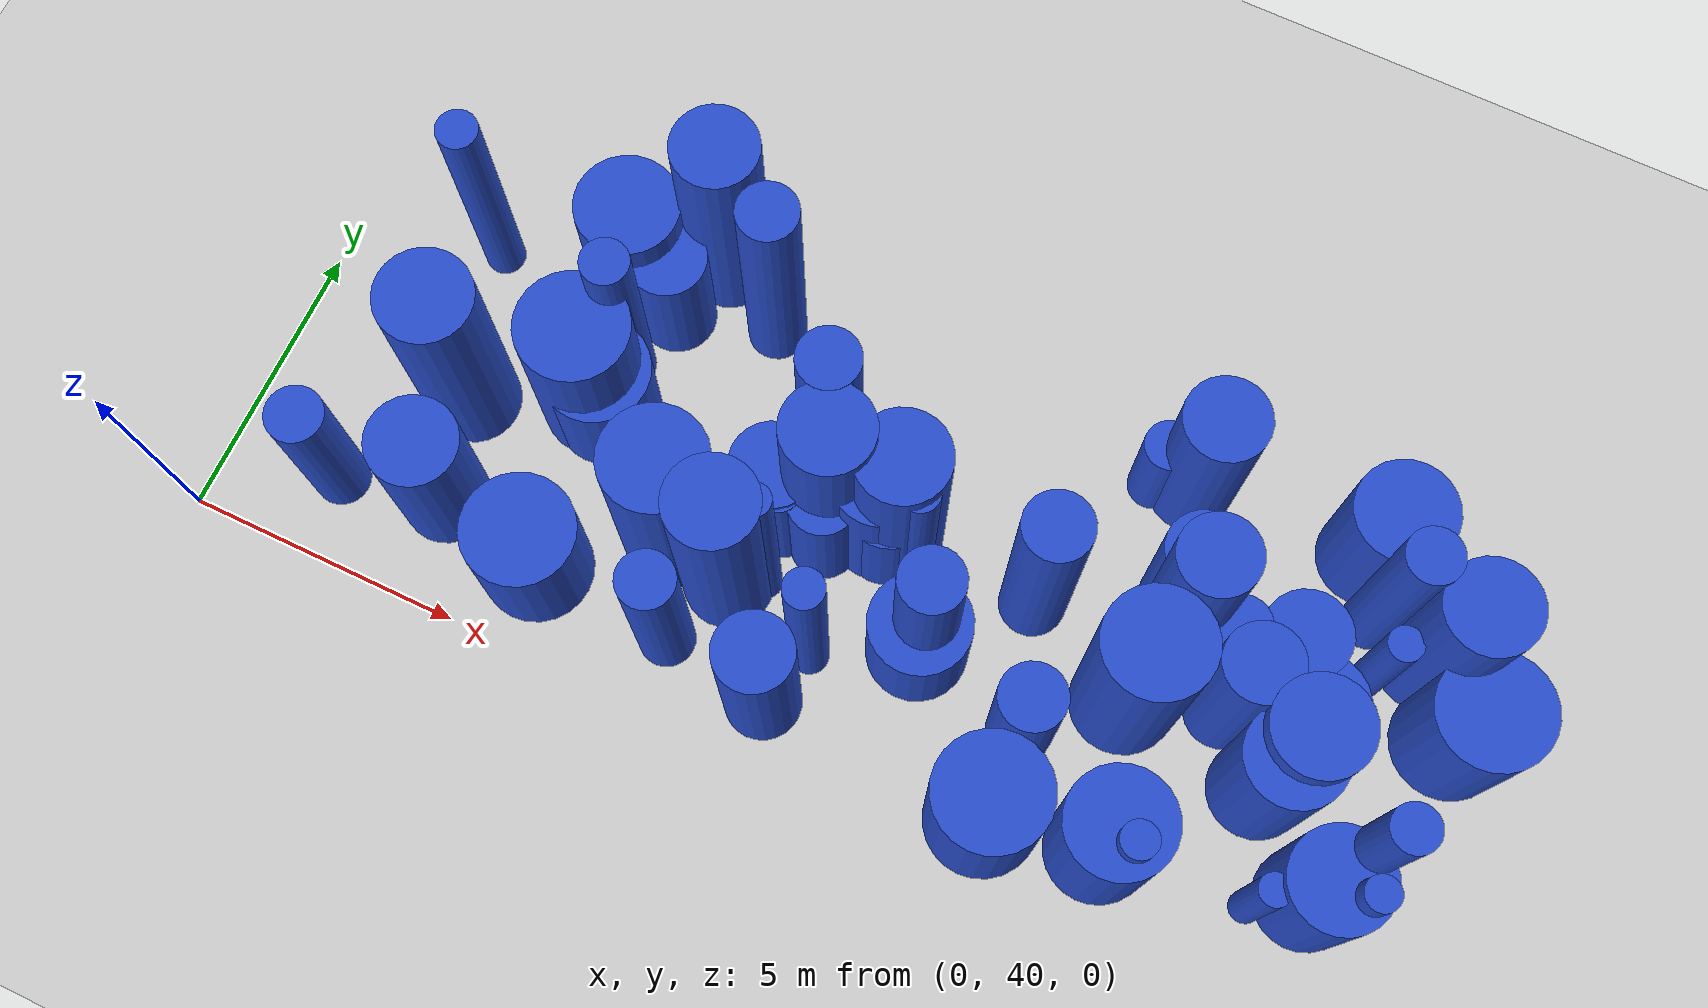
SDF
<sdf version="1.6">
 <world name="default">
  <model name="ground_plane">
   <static>1</static>
   <link name="link">
    <collision name="collision">
     <geometry><plane><normal>0 0 1</normal><size>100 100</size></plane></geometry>
     <surface><friction><ode><mu>100</mu><mu2>50</mu2></ode></friction></surface>
    </collision>
    <visual name="visual">
     <cast_shadows>0</cast_shadows>
     <geometry><plane><normal>0 0 1</normal><size>100 100</size></plane></geometry>
     <material>
      <script><uri>file://media/materials/scripts/gazebo.material</uri><name>Gazebo/Grey</name></script>
     </material>
    </visual>
   </link>
  </model>
  <model name="2">
   <static>0</static>
   <link name="link">
    <inertial>
     <mass>2</mass>
     <inertia><ixx>2.62741</ixx><ixy>0</ixy><ixz>0</ixz><iyy>2.62741</iyy><iyz>0</iyz><izz>0.536153</izz></inertia>
    </inertial>
    <collision name="collision">
     <geometry><cylinder><length>3.76245</length><radius>0.732225</radius></cylinder></geometry>
     <surface><contact><collide_without_contact>1</collide_without_contact></contact></surface>
    </collision>
    <visual name="visual">
     <geometry><cylinder><length>3.76245</length><radius>0.732225</radius></cylinder></geometry>
     <material>
      <script><uri>file://media/materials/scripts/gazebo.material</uri><name>Gazebo/Blue</name></script>
     </material>
    </visual>
    <gravity>0</gravity>
   </link>
   <pose>15.603 47.5677 1.88122 0 -0 0</pose>
  </model>
  <model name="3">
   <static>0</static>
   <link name="link">
    <inertial>
     <mass>2</mass>
     <inertia>
      <ixx>1.36545</ixx>
      <ixy>0</ixy>
      <ixz>0</ixz>
      <iyy>1.36545</iyy>
      <iyz>0</iyz>
      <izz>0.0913502</izz>
     </inertia>
    </inertial>
    <collision name="collision">
     <geometry><cylinder><length>2.81401</length><radius>0.302242</radius></cylinder></geometry>
     <surface><contact><collide_without_contact>1</collide_without_contact></contact></surface>
    </collision>
    <visual name="visual">
     <geometry><cylinder><length>2.81401</length><radius>0.302242</radius></cylinder></geometry>
     <material>
      <script><uri>file://media/materials/scripts/gazebo.material</uri><name>Gazebo/Blue</name></script>
     </material>
    </visual>
    <gravity>0</gravity>
   </link>
   <pose>19.5801 45.6834 1.40701 0 -0 0</pose>
  </model>
  <model name="4">
   <static>0</static>
   <link name="link">
    <inertial>
     <mass>2</mass>
     <inertia><ixx>1.95961</ixx><ixy>0</ixy><ixz>0</ixz><iyy>1.95961</iyy><iyz>0</iyz><izz>0.982624</izz></inertia>
    </inertial>
    <collision name="collision">
     <geometry><cylinder><length>2.96813</length><radius>0.991274</radius></cylinder></geometry>
     <surface><contact><collide_without_contact>1</collide_without_contact></contact></surface>
    </collision>
    <visual name="visual">
     <geometry><cylinder><length>2.96813</length><radius>0.991274</radius></cylinder></geometry>
     <material>
      <script><uri>file://media/materials/scripts/gazebo.material</uri><name>Gazebo/Blue</name></script>
     </material>
    </visual>
    <gravity>0</gravity>
   </link>
   <pose>14.6645 40.756 1.48407 0 -0 0</pose>
  </model>
  <model name="5">
   <static>0</static>
   <link name="link">
    <inertial>
     <mass>2</mass>
     <inertia><ixx>2.61652</ixx><ixy>0</ixy><ixz>0</ixz><iyy>2.61652</iyy><iyz>0</iyz><izz>0.44531</izz></inertia>
    </inertial>
    <collision name="collision">
     <geometry><cylinder><length>3.78988</length><radius>0.667315</radius></cylinder></geometry>
     <surface><contact><collide_without_contact>1</collide_without_contact></contact></surface>
    </collision>
    <visual name="visual">
     <geometry><cylinder><length>3.78988</length><radius>0.667315</radius></cylinder></geometry>
     <material>
      <script><uri>file://media/materials/scripts/gazebo.material</uri><name>Gazebo/Blue</name></script>
     </material>
    </visual>
    <gravity>0</gravity>
   </link>
   <pose>10.4927 41.0038 1.89494 0 -0 0</pose>
  </model>
  <model name="6">
   <static>0</static>
   <link name="link">
    <inertial>
     <mass>2</mass>
     <inertia><ixx>2.11932</ixx><ixy>0</ixy><ixz>0</ixz><iyy>2.11932</iyy><iyz>0</iyz><izz>0.84148</izz></inertia>
    </inertial>
    <collision name="collision">
     <geometry><cylinder><length>3.19241</length><radius>0.917322</radius></cylinder></geometry>
     <surface><contact><collide_without_contact>1</collide_without_contact></contact></surface>
    </collision>
    <visual name="visual">
     <geometry><cylinder><length>3.19241</length><radius>0.917322</radius></cylinder></geometry>
     <material>
      <script><uri>file://media/materials/scripts/gazebo.material</uri><name>Gazebo/Blue</name></script>
     </material>
    </visual>
    <gravity>0</gravity>
   </link>
   <pose>16.6156 41.1221 1.5962 0 -0 0</pose>
  </model>
  <model name="8">
   <static>0</static>
   <link name="link">
    <inertial>
     <mass>2</mass>
     <inertia><ixx>3.79155</ixx><ixy>0</ixy><ixz>0</ixz><iyy>3.79155</iyy><iyz>0</iyz><izz>0.640544</izz></inertia>
    </inertial>
    <collision name="collision">
     <geometry><cylinder><length>4.56373</length><radius>0.80034</radius></cylinder></geometry>
     <surface><contact><collide_without_contact>1</collide_without_contact></contact></surface>
    </collision>
    <visual name="visual">
     <geometry><cylinder><length>4.56373</length><radius>0.80034</radius></cylinder></geometry>
     <material>
      <script><uri>file://media/materials/scripts/gazebo.material</uri><name>Gazebo/Blue</name></script>
     </material>
    </visual>
    <gravity>0</gravity>
   </link>
   <pose>11.3326 44.5695 2.28187 0 -0 0</pose>
  </model>
  <model name="25">
   <static>0</static>
   <link name="link">
    <inertial>
     <mass>2</mass>
     <inertia><ixx>1.19215</ixx><ixy>0</ixy><ixz>0</ixz><iyy>1.19215</iyy><iyz>0</iyz><izz>0.566845</izz></inertia>
    </inertial>
    <collision name="collision">
     <geometry><cylinder><length>2.33503</length><radius>0.752891</radius></cylinder></geometry>
     <surface><contact><collide_without_contact>1</collide_without_contact></contact></surface>
    </collision>
    <visual name="visual">
     <geometry><cylinder><length>2.33503</length><radius>0.752891</radius></cylinder></geometry>
     <material>
      <script><uri>file://media/materials/scripts/gazebo.material</uri><name>Gazebo/Blue</name></script>
     </material>
    </visual>
    <gravity>0</gravity>
   </link>
   <pose>18.1857 45.3246 1.16752 0 -0 0</pose>
  </model>
  <model name="26">
   <static>0</static>
   <link name="link">
    <inertial>
     <mass>2</mass>
     <inertia><ixx>1.12247</ixx><ixy>0</ixy><ixz>0</ixz><iyy>1.12247</iyy><iyz>0</iyz><izz>0.817696</izz></inertia>
    </inertial>
    <collision name="collision">
     <geometry><cylinder><length>2.06923</length><radius>0.904265</radius></cylinder></geometry>
     <surface><contact><collide_without_contact>1</collide_without_contact></contact></surface>
    </collision>
    <visual name="visual">
     <geometry><cylinder><length>2.06923</length><radius>0.904265</radius></cylinder></geometry>
     <material>
      <script><uri>file://media/materials/scripts/gazebo.material</uri><name>Gazebo/Blue</name></script>
     </material>
    </visual>
    <gravity>0</gravity>
   </link>
   <pose>18.7542 44.3924 1.03462 0 -0 0</pose>
  </model>
  <model name="47">
   <static>0</static>
   <link name="link">
    <inertial>
     <mass>2</mass>
     <inertia><ixx>3.0805</ixx><ixy>0</ixy><ixz>0</ixz><iyy>3.0805</iyy><iyz>0</iyz><izz>0.647324</izz></inertia>
    </inertial>
    <collision name="collision">
     <geometry><cylinder><length>4.06707</length><radius>0.804564</radius></cylinder></geometry>
     <surface><contact><collide_without_contact>1</collide_without_contact></contact></surface>
    </collision>
    <visual name="visual">
     <geometry><cylinder><length>4.06707</length><radius>0.804564</radius></cylinder></geometry>
     <material>
      <script><uri>file://media/materials/scripts/gazebo.material</uri><name>Gazebo/Blue</name></script>
     </material>
    </visual>
    <gravity>0</gravity>
   </link>
   <pose>20.3861 46.3769 2.03353 0 -0 0</pose>
  </model>
  <model name="48">
   <static>0</static>
   <link name="link">
    <inertial>
     <mass>2</mass>
     <inertia><ixx>1.82802</ixx><ixy>0</ixy><ixz>0</ixz><iyy>1.82802</iyy><iyz>0</iyz><izz>0.254102</izz></inertia>
    </inertial>
    <collision name="collision">
     <geometry><cylinder><length>3.19465</length><radius>0.504085</radius></cylinder></geometry>
     <surface><contact><collide_without_contact>1</collide_without_contact></contact></surface>
    </collision>
    <visual name="visual">
     <geometry><cylinder><length>3.19465</length><radius>0.504085</radius></cylinder></geometry>
     <material>
      <script><uri>file://media/materials/scripts/gazebo.material</uri><name>Gazebo/Blue</name></script>
     </material>
    </visual>
    <gravity>0</gravity>
   </link>
   <pose>5.44202 44.3514 1.59733 0 -0 0</pose>
  </model>
  <model name="90">
   <static>0</static>
   <link name="link">
    <inertial>
     <mass>2</mass>
     <inertia><ixx>3.38084</ixx><ixy>0</ixy><ixz>0</ixz><iyy>3.38084</iyy><iyz>0</iyz><izz>0.117593</izz></inertia>
    </inertial>
    <collision name="collision">
     <geometry><cylinder><length>4.46456</length><radius>0.342918</radius></cylinder></geometry>
     <surface><contact><collide_without_contact>1</collide_without_contact></contact></surface>
    </collision>
    <visual name="visual">
     <geometry><cylinder><length>4.46456</length><radius>0.342918</radius></cylinder></geometry>
     <material>
      <script><uri>file://media/materials/scripts/gazebo.material</uri><name>Gazebo/Blue</name></script>
     </material>
    </visual>
    <gravity>0</gravity>
   </link>
   <pose>10.8516 42.0753 2.23228 0 -0 0</pose>
  </model>
  <model name="99">
   <static>0</static>
   <link name="link">
    <inertial>
     <mass>2</mass>
     <inertia><ixx>3.91172</ixx><ixy>0</ixy><ixz>0</ixz><iyy>3.91172</iyy><iyz>0</iyz><izz>0.672515</izz></inertia>
    </inertial>
    <collision name="collision">
     <geometry><cylinder><length>4.63171</length><radius>0.82007</radius></cylinder></geometry>
     <surface><contact><collide_without_contact>1</collide_without_contact></contact></surface>
    </collision>
    <visual name="visual">
     <geometry><cylinder><length>4.63171</length><radius>0.82007</radius></cylinder></geometry>
     <material>
      <script><uri>file://media/materials/scripts/gazebo.material</uri><name>Gazebo/Blue</name></script>
     </material>
    </visual>
    <gravity>0</gravity>
   </link>
   <pose>3.48026 43.7493 2.31586 0 -0 0</pose>
  </model>
  <model name="108">
   <static>0</static>
   <link name="link">
    <inertial>
     <mass>2</mass>
     <inertia><ixx>1.39367</ixx><ixy>0</ixy><ixz>0</ixz><iyy>1.39367</iyy><iyz>0</iyz><izz>0.956084</izz></inertia>
    </inertial>
    <collision name="collision">
     <geometry><cylinder><length>2.34388</length><radius>0.977795</radius></cylinder></geometry>
     <surface><contact><collide_without_contact>1</collide_without_contact></contact></surface>
    </collision>
    <visual name="visual">
     <geometry><cylinder><length>2.34388</length><radius>0.977795</radius></cylinder></geometry>
     <material>
      <script><uri>file://media/materials/scripts/gazebo.material</uri><name>Gazebo/Blue</name></script>
     </material>
    </visual>
    <gravity>0</gravity>
   </link>
   <pose>5.9367 41.4672 1.17194 0 -0 0</pose>
  </model>
  <model name="114">
   <static>0</static>
   <link name="link">
    <inertial>
     <mass>2</mass>
     <inertia><ixx>1.52905</ixx><ixy>0</ixy><ixz>0</ixz><iyy>1.52905</iyy><iyz>0</iyz><izz>0.330127</izz></inertia>
    </inertial>
    <collision name="collision">
     <geometry><cylinder><length>2.86076</length><radius>0.574567</radius></cylinder></geometry>
     <surface><contact><collide_without_contact>1</collide_without_contact></contact></surface>
    </collision>
    <visual name="visual">
     <geometry><cylinder><length>2.86076</length><radius>0.574567</radius></cylinder></geometry>
     <material>
      <script><uri>file://media/materials/scripts/gazebo.material</uri><name>Gazebo/Blue</name></script>
     </material>
    </visual>
    <gravity>0</gravity>
   </link>
   <pose>14.6221 42.3954 1.43038 0 -0 0</pose>
  </model>
  <model name="115">
   <static>0</static>
   <link name="link">
    <inertial>
     <mass>2</mass>
     <inertia><ixx>1.65039</ixx><ixy>0</ixy><ixz>0</ixz><iyy>1.65039</iyy><iyz>0</iyz><izz>0.773236</izz></inertia>
    </inertial>
    <collision name="collision">
     <geometry><cylinder><length>2.75365</length><radius>0.879338</radius></cylinder></geometry>
     <surface><contact><collide_without_contact>1</collide_without_contact></contact></surface>
    </collision>
    <visual name="visual">
     <geometry><cylinder><length>2.75365</length><radius>0.879338</radius></cylinder></geometry>
     <material>
      <script><uri>file://media/materials/scripts/gazebo.material</uri><name>Gazebo/Blue</name></script>
     </material>
    </visual>
    <gravity>0</gravity>
   </link>
   <pose>18.8288 47.7637 1.37683 0 -0 0</pose>
  </model>
  <model name="117">
   <static>0</static>
   <link name="link">
    <inertial>
     <mass>2</mass>
     <inertia><ixx>3.9347</ixx><ixy>0</ixy><ixz>0</ixz><iyy>3.9347</iyy><iyz>0</iyz><izz>0.126221</izz></inertia>
    </inertial>
    <collision name="collision">
     <geometry><cylinder><length>4.8197</length><radius>0.355276</radius></cylinder></geometry>
     <surface><contact><collide_without_contact>1</collide_without_contact></contact></surface>
    </collision>
    <visual name="visual">
     <geometry><cylinder><length>4.8197</length><radius>0.355276</radius></cylinder></geometry>
     <material>
      <script><uri>file://media/materials/scripts/gazebo.material</uri><name>Gazebo/Blue</name></script>
     </material>
    </visual>
    <gravity>0</gravity>
   </link>
   <pose>2.66707 46.4198 2.40985 0 -0 0</pose>
  </model>
  <model name="118">
   <static>0</static>
   <link name="link">
    <inertial>
     <mass>2</mass>
     <inertia><ixx>4.07264</ixx><ixy>0</ixy><ixz>0</ixz><iyy>4.07264</iyy><iyz>0</iyz><izz>0.562164</izz></inertia>
    </inertial>
    <collision name="collision">
     <geometry><cylinder><length>4.76963</length><radius>0.749776</radius></cylinder></geometry>
     <surface><contact><collide_without_contact>1</collide_without_contact></contact></surface>
    </collision>
    <visual name="visual">
     <geometry><cylinder><length>4.76963</length><radius>0.749776</radius></cylinder></geometry>
     <material>
      <script><uri>file://media/materials/scripts/gazebo.material</uri><name>Gazebo/Blue</name></script>
     </material>
    </visual>
    <gravity>0</gravity>
   </link>
   <pose>6.48071 47.9206 2.38481 0 -0 0</pose>
  </model>
  <model name="123">
   <static>0</static>
   <link name="link">
    <inertial>
     <mass>2</mass>
     <inertia>
      <ixx>2.14543</ixx>
      <ixy>0</ixy>
      <ixz>0</ixz>
      <iyy>2.14543</iyy>
      <iyz>0</iyz>
      <izz>0.0998693</izz>
     </inertia>
    </inertial>
    <collision name="collision">
     <geometry><cylinder><length>3.54584</length><radius>0.316021</radius></cylinder></geometry>
     <surface><contact><collide_without_contact>1</collide_without_contact></contact></surface>
    </collision>
    <visual name="visual">
     <geometry><cylinder><length>3.54584</length><radius>0.316021</radius></cylinder></geometry>
     <material>
      <script><uri>file://media/materials/scripts/gazebo.material</uri><name>Gazebo/Blue</name></script>
     </material>
    </visual>
    <gravity>0</gravity>
   </link>
   <pose>16.9404 40.9377 1.77292 0 -0 0</pose>
  </model>
  <model name="125">
   <static>0</static>
   <link name="link">
    <inertial>
     <mass>2</mass>
     <inertia><ixx>2.1948</ixx><ixy>0</ixy><ixz>0</ixz><iyy>2.1948</iyy><iyz>0</iyz><izz>0.726981</izz></inertia>
    </inertial>
    <collision name="collision">
     <geometry><cylinder><length>3.31479</length><radius>0.852632</radius></cylinder></geometry>
     <surface><contact><collide_without_contact>1</collide_without_contact></contact></surface>
    </collision>
    <visual name="visual">
     <geometry><cylinder><length>3.31479</length><radius>0.852632</radius></cylinder></geometry>
     <material>
      <script><uri>file://media/materials/scripts/gazebo.material</uri><name>Gazebo/Blue</name></script>
     </material>
    </visual>
    <gravity>0</gravity>
   </link>
   <pose>18.6277 43.1827 1.65739 0 -0 0</pose>
  </model>
  <model name="127">
   <static>0</static>
   <link name="link">
    <inertial>
     <mass>2</mass>
     <inertia><ixx>1.9233</ixx><ixy>0</ixy><ixz>0</ixz><iyy>1.9233</iyy><iyz>0</iyz><izz>0.0898963</izz></inertia>
    </inertial>
    <collision name="collision">
     <geometry><cylinder><length>3.3571</length><radius>0.299827</radius></cylinder></geometry>
     <surface><contact><collide_without_contact>1</collide_without_contact></contact></surface>
    </collision>
    <visual name="visual">
     <geometry><cylinder><length>3.3571</length><radius>0.299827</radius></cylinder></geometry>
     <material>
      <script><uri>file://media/materials/scripts/gazebo.material</uri><name>Gazebo/Blue</name></script>
     </material>
    </visual>
    <gravity>0</gravity>
   </link>
   <pose>20.5448 41.7821 1.67855 0 -0 0</pose>
  </model>
  <model name="129">
   <static>0</static>
   <link name="link">
    <inertial>
     <mass>2</mass>
     <inertia>
      <ixx>3.89529</ixx>
      <ixy>0</ixy>
      <ixz>0</ixz>
      <iyy>3.89529</iyy>
      <iyz>0</iyz>
      <izz>0.0825572</izz>
     </inertia>
    </inertial>
    <collision name="collision">
     <geometry><cylinder><length>4.80875</length><radius>0.287328</radius></cylinder></geometry>
     <surface><contact><collide_without_contact>1</collide_without_contact></contact></surface>
    </collision>
    <visual name="visual">
     <geometry><cylinder><length>4.80875</length><radius>0.287328</radius></cylinder></geometry>
     <material>
      <script><uri>file://media/materials/scripts/gazebo.material</uri><name>Gazebo/Blue</name></script>
     </material>
    </visual>
    <gravity>0</gravity>
   </link>
   <pose>9.62037 42.9112 2.40438 0 -0 0</pose>
  </model>
  <model name="132">
   <static>0</static>
   <link name="link">
    <inertial>
     <mass>2</mass>
     <inertia><ixx>3.33853</ixx><ixy>0</ixy><ixz>0</ixz><iyy>3.33853</iyy><iyz>0</iyz><izz>0.305697</izz></inertia>
    </inertial>
    <collision name="collision">
     <geometry><cylinder><length>4.37196</length><radius>0.552899</radius></cylinder></geometry>
     <surface><contact><collide_without_contact>1</collide_without_contact></contact></surface>
    </collision>
    <visual name="visual">
     <geometry><cylinder><length>4.37196</length><radius>0.552899</radius></cylinder></geometry>
     <material>
      <script><uri>file://media/materials/scripts/gazebo.material</uri><name>Gazebo/Blue</name></script>
     </material>
    </visual>
    <gravity>0</gravity>
   </link>
   <pose>12.5302 43.0419 2.18598 0 -0 0</pose>
  </model>
  <model name="143">
   <static>0</static>
   <link name="link">
    <inertial>
     <mass>2</mass>
     <inertia><ixx>4.18174</ixx><ixy>0</ixy><ixz>0</ixz><iyy>4.18174</iyy><iyz>0</iyz><izz>0.611947</izz></inertia>
    </inertial>
    <collision name="collision">
     <geometry><cylinder><length>4.8223</length><radius>0.78227</radius></cylinder></geometry>
     <surface><contact><collide_without_contact>1</collide_without_contact></contact></surface>
    </collision>
    <visual name="visual">
     <geometry><cylinder><length>4.8223</length><radius>0.78227</radius></cylinder></geometry>
     <material>
      <script><uri>file://media/materials/scripts/gazebo.material</uri><name>Gazebo/Blue</name></script>
     </material>
    </visual>
    <gravity>0</gravity>
   </link>
   <pose>9.05167 42.6127 2.41115 0 -0 0</pose>
  </model>
  <model name="161">
   <static>0</static>
   <link name="link">
    <inertial>
     <mass>2</mass>
     <inertia><ixx>3.0886</ixx><ixy>0</ixy><ixz>0</ixz><iyy>3.0886</iyy><iyz>0</iyz><izz>0.117069</izz></inertia>
    </inertial>
    <collision name="collision">
     <geometry><cylinder><length>4.26384</length><radius>0.342154</radius></cylinder></geometry>
     <surface><contact><collide_without_contact>1</collide_without_contact></contact></surface>
    </collision>
    <visual name="visual">
     <geometry><cylinder><length>4.26384</length><radius>0.342154</radius></cylinder></geometry>
     <material>
      <script><uri>file://media/materials/scripts/gazebo.material</uri><name>Gazebo/Blue</name></script>
     </material>
    </visual>
    <gravity>0</gravity>
   </link>
   <pose>11.7784 44.2515 2.13192 0 -0 0</pose>
  </model>
  <model name="164">
   <static>0</static>
   <link name="link">
    <inertial>
     <mass>2</mass>
     <inertia><ixx>1.97533</ixx><ixy>0</ixy><ixz>0</ixz><iyy>1.97533</iyy><iyz>0</iyz><izz>0.825921</izz></inertia>
    </inertial>
    <collision name="collision">
     <geometry><cylinder><length>3.06173</length><radius>0.908802</radius></cylinder></geometry>
     <surface><contact><collide_without_contact>1</collide_without_contact></contact></surface>
    </collision>
    <visual name="visual">
     <geometry><cylinder><length>3.06173</length><radius>0.908802</radius></cylinder></geometry>
     <material>
      <script><uri>file://media/materials/scripts/gazebo.material</uri><name>Gazebo/Blue</name></script>
     </material>
    </visual>
    <gravity>0</gravity>
   </link>
   <pose>5.14258 47.0804 1.53087 0 -0 0</pose>
  </model>
  <model name="168">
   <static>0</static>
   <link name="link">
    <inertial>
     <mass>2</mass>
     <inertia><ixx>2.56804</ixx><ixy>0</ixy><ixz>0</ixz><iyy>2.56804</iyy><iyz>0</iyz><izz>0.441349</izz></inertia>
    </inertial>
    <collision name="collision">
     <geometry><cylinder><length>3.75289</length><radius>0.664341</radius></cylinder></geometry>
     <surface><contact><collide_without_contact>1</collide_without_contact></contact></surface>
    </collision>
    <visual name="visual">
     <geometry><cylinder><length>3.75289</length><radius>0.664341</radius></cylinder></geometry>
     <material>
      <script><uri>file://media/materials/scripts/gazebo.material</uri><name>Gazebo/Blue</name></script>
     </material>
    </visual>
    <gravity>0</gravity>
   </link>
   <pose>17.5899 44.1807 1.87645 0 -0 0</pose>
  </model>
  <model name="172">
   <static>0</static>
   <link name="link">
    <inertial>
     <mass>2</mass>
     <inertia>
      <ixx>1.13704</ixx>
      <ixy>0</ixy>
      <ixz>0</ixz>
      <iyy>1.13704</iyy>
      <iyz>0</iyz>
      <izz>0.0775618</izz>
     </inertia>
    </inertial>
    <collision name="collision">
     <geometry><cylinder><length>2.56701</length><radius>0.278499</radius></cylinder></geometry>
     <surface><contact><collide_without_contact>1</collide_without_contact></contact></surface>
    </collision>
    <visual name="visual">
     <geometry><cylinder><length>2.56701</length><radius>0.278499</radius></cylinder></geometry>
     <material>
      <script><uri>file://media/materials/scripts/gazebo.material</uri><name>Gazebo/Blue</name></script>
     </material>
    </visual>
    <gravity>0</gravity>
   </link>
   <pose>19.1871 41.2973 1.2835 0 -0 0</pose>
  </model>
  <model name="185">
   <static>0</static>
   <link name="link">
    <inertial>
     <mass>2</mass>
     <inertia><ixx>1.34783</ixx><ixy>0</ixy><ixz>0</ixz><iyy>1.34783</iyy><iyz>0</iyz><izz>0.348875</izz></inertia>
    </inertial>
    <collision name="collision">
     <geometry><cylinder><length>2.65336</length><radius>0.590656</radius></cylinder></geometry>
     <surface><contact><collide_without_contact>1</collide_without_contact></contact></surface>
    </collision>
    <visual name="visual">
     <geometry><cylinder><length>2.65336</length><radius>0.590656</radius></cylinder></geometry>
     <material>
      <script><uri>file://media/materials/scripts/gazebo.material</uri><name>Gazebo/Blue</name></script>
     </material>
    </visual>
    <gravity>0</gravity>
   </link>
   <pose>10.2447 43.9313 1.32668 0 -0 0</pose>
  </model>
  <model name="191">
   <static>0</static>
   <link name="link">
    <inertial>
     <mass>2</mass>
     <inertia><ixx>1.26996</ixx><ixy>0</ixy><ixz>0</ixz><iyy>1.26996</iyy><iyz>0</iyz><izz>0.907027</izz></inertia>
    </inertial>
    <collision name="collision">
     <geometry><cylinder><length>2.2133</length><radius>0.952379</radius></cylinder></geometry>
     <surface><contact><collide_without_contact>1</collide_without_contact></contact></surface>
    </collision>
    <visual name="visual">
     <geometry><cylinder><length>2.2133</length><radius>0.952379</radius></cylinder></geometry>
     <material>
      <script><uri>file://media/materials/scripts/gazebo.material</uri><name>Gazebo/Blue</name></script>
     </material>
    </visual>
    <gravity>0</gravity>
   </link>
   <pose>5.76202 44.5077 1.10665 0 -0 0</pose>
  </model>
  <model name="201">
   <static>0</static>
   <link name="link">
    <inertial>
     <mass>2</mass>
     <inertia><ixx>1.82934</ixx><ixy>0</ixy><ixz>0</ixz><iyy>1.82934</iyy><iyz>0</iyz><izz>0.168107</izz></inertia>
    </inertial>
    <collision name="collision">
     <geometry><cylinder><length>3.236</length><radius>0.410008</radius></cylinder></geometry>
     <surface><contact><collide_without_contact>1</collide_without_contact></contact></surface>
    </collision>
    <visual name="visual">
     <geometry><cylinder><length>3.236</length><radius>0.410008</radius></cylinder></geometry>
     <material>
      <script><uri>file://media/materials/scripts/gazebo.material</uri><name>Gazebo/Blue</name></script>
     </material>
    </visual>
    <gravity>0</gravity>
   </link>
   <pose>7.65902 43.0719 1.618 0 -0 0</pose>
  </model>
  <model name="211">
   <static>0</static>
   <link name="link">
    <inertial>
     <mass>2</mass>
     <inertia><ixx>3.11453</ixx><ixy>0</ixy><ixz>0</ixz><iyy>3.11453</iyy><iyz>0</iyz><izz>0.22593</izz></inertia>
    </inertial>
    <collision name="collision">
     <geometry><cylinder><length>4.24375</length><radius>0.475321</radius></cylinder></geometry>
     <surface><contact><collide_without_contact>1</collide_without_contact></contact></surface>
    </collision>
    <visual name="visual">
     <geometry><cylinder><length>4.24375</length><radius>0.475321</radius></cylinder></geometry>
     <material>
      <script><uri>file://media/materials/scripts/gazebo.material</uri><name>Gazebo/Blue</name></script>
     </material>
    </visual>
    <gravity>0</gravity>
   </link>
   <pose>19.2683 46.6829 2.12187 0 -0 0</pose>
  </model>
  <model name="247">
   <static>0</static>
   <link name="link">
    <inertial>
     <mass>2</mass>
     <inertia><ixx>1.78778</ixx><ixy>0</ixy><ixz>0</ixz><iyy>1.78778</iyy><iyz>0</iyz><izz>0.988791</izz></inertia>
    </inertial>
    <collision name="collision">
     <geometry><cylinder><length>2.78574</length><radius>0.99438</radius></cylinder></geometry>
     <surface><contact><collide_without_contact>1</collide_without_contact></contact></surface>
    </collision>
    <visual name="visual">
     <geometry><cylinder><length>2.78574</length><radius>0.99438</radius></cylinder></geometry>
     <material>
      <script><uri>file://media/materials/scripts/gazebo.material</uri><name>Gazebo/Blue</name></script>
     </material>
    </visual>
    <gravity>0</gravity>
   </link>
   <pose>21.2453 45.2966 1.39287 0 -0 0</pose>
  </model>
  <model name="250">
   <static>0</static>
   <link name="link">
    <inertial>
     <mass>2</mass>
     <inertia><ixx>3.56632</ixx><ixy>0</ixy><ixz>0</ixz><iyy>3.56632</iyy><iyz>0</iyz><izz>0.825896</izz></inertia>
    </inertial>
    <collision name="collision">
     <geometry><cylinder><length>4.34974</length><radius>0.908788</radius></cylinder></geometry>
     <surface><contact><collide_without_contact>1</collide_without_contact></contact></surface>
    </collision>
    <visual name="visual">
     <geometry><cylinder><length>4.34974</length><radius>0.908788</radius></cylinder></geometry>
     <material>
      <script><uri>file://media/materials/scripts/gazebo.material</uri><name>Gazebo/Blue</name></script>
     </material>
    </visual>
    <gravity>0</gravity>
   </link>
   <pose>7.8489 42.9753 2.17487 0 -0 0</pose>
  </model>
  <model name="252">
   <static>0</static>
   <link name="link">
    <inertial>
     <mass>2</mass>
     <inertia><ixx>3.80006</ixx><ixy>0</ixy><ixz>0</ixz><iyy>3.80006</iyy><iyz>0</iyz><izz>0.466689</izz></inertia>
    </inertial>
    <collision name="collision">
     <geometry><cylinder><length>4.62605</length><radius>0.683146</radius></cylinder></geometry>
     <surface><contact><collide_without_contact>1</collide_without_contact></contact></surface>
    </collision>
    <visual name="visual">
     <geometry><cylinder><length>4.62605</length><radius>0.683146</radius></cylinder></geometry>
     <material>
      <script><uri>file://media/materials/scripts/gazebo.material</uri><name>Gazebo/Blue</name></script>
     </material>
    </visual>
    <gravity>0</gravity>
   </link>
   <pose>16.2891 45.1731 2.31302 0 -0 0</pose>
  </model>
  <model name="254">
   <static>0</static>
   <link name="link">
    <inertial>
     <mass>2</mass>
     <inertia><ixx>3.39591</ixx><ixy>0</ixy><ixz>0</ixz><iyy>3.39591</iyy><iyz>0</iyz><izz>0.172595</izz></inertia>
    </inertial>
    <collision name="collision">
     <geometry><cylinder><length>4.45619</length><radius>0.415445</radius></cylinder></geometry>
     <surface><contact><collide_without_contact>1</collide_without_contact></contact></surface>
    </collision>
    <visual name="visual">
     <geometry><cylinder><length>4.45619</length><radius>0.415445</radius></cylinder></geometry>
     <material>
      <script><uri>file://media/materials/scripts/gazebo.material</uri><name>Gazebo/Blue</name></script>
     </material>
    </visual>
    <gravity>0</gravity>
   </link>
   <pose>5.7096 45.5247 2.2281 0 -0 0</pose>
  </model>
  <model name="268">
   <static>0</static>
   <link name="link">
    <inertial>
     <mass>2</mass>
     <inertia><ixx>4.10684</ixx><ixy>0</ixy><ixz>0</ixz><iyy>4.10684</iyy><iyz>0</iyz><izz>0.614218</izz></inertia>
    </inertial>
    <collision name="collision">
     <geometry><cylinder><length>4.77476</length><radius>0.783721</radius></cylinder></geometry>
     <surface><contact><collide_without_contact>1</collide_without_contact></contact></surface>
    </collision>
    <visual name="visual">
     <geometry><cylinder><length>4.77476</length><radius>0.783721</radius></cylinder></geometry>
     <material>
      <script><uri>file://media/materials/scripts/gazebo.material</uri><name>Gazebo/Blue</name></script>
     </material>
    </visual>
    <gravity>0</gravity>
   </link>
   <pose>10.1319 44.4301 2.38738 0 -0 0</pose>
  </model>
  <model name="271">
   <static>0</static>
   <link name="link">
    <inertial>
     <mass>2</mass>
     <inertia>
      <ixx>0.864434</ixx>
      <ixy>0</ixy>
      <ixz>0</ixz>
      <iyy>0.864434</iyy>
      <iyz>0</iyz>
      <izz>0.192955</izz>
     </inertia>
    </inertial>
    <collision name="collision">
     <geometry><cylinder><length>2.14656</length><radius>0.439267</radius></cylinder></geometry>
     <surface><contact><collide_without_contact>1</collide_without_contact></contact></surface>
    </collision>
    <visual name="visual">
     <geometry><cylinder><length>2.14656</length><radius>0.439267</radius></cylinder></geometry>
     <material>
      <script><uri>file://media/materials/scripts/gazebo.material</uri><name>Gazebo/Blue</name></script>
     </material>
    </visual>
    <gravity>0</gravity>
   </link>
   <pose>14.9623 47.3943 1.07328 0 -0 0</pose>
  </model>
  <model name="284">
   <static>0</static>
   <link name="link">
    <inertial>
     <mass>2</mass>
     <inertia><ixx>1.92901</ixx><ixy>0</ixy><ixz>0</ixz><iyy>1.92901</iyy><iyz>0</iyz><izz>0.247041</izz></inertia>
    </inertial>
    <collision name="collision">
     <geometry><cylinder><length>3.29134</length><radius>0.497032</radius></cylinder></geometry>
     <surface><contact><collide_without_contact>1</collide_without_contact></contact></surface>
    </collision>
    <visual name="visual">
     <geometry><cylinder><length>3.29134</length><radius>0.497032</radius></cylinder></geometry>
     <material>
      <script><uri>file://media/materials/scripts/gazebo.material</uri><name>Gazebo/Blue</name></script>
     </material>
    </visual>
    <gravity>0</gravity>
   </link>
   <pose>2.07287 41.4534 1.64567 0 -0 0</pose>
  </model>
  <model name="296">
   <static>0</static>
   <link name="link">
    <inertial>
     <mass>2</mass>
     <inertia><ixx>1.27314</ixx><ixy>0</ixy><ixz>0</ixz><iyy>1.27314</iyy><iyz>0</iyz><izz>0.135003</izz></inertia>
    </inertial>
    <collision name="collision">
     <geometry><cylinder><length>2.68957</length><radius>0.367428</radius></cylinder></geometry>
     <surface><contact><collide_without_contact>1</collide_without_contact></contact></surface>
    </collision>
    <visual name="visual">
     <geometry><cylinder><length>2.68957</length><radius>0.367428</radius></cylinder></geometry>
     <material>
      <script><uri>file://media/materials/scripts/gazebo.material</uri><name>Gazebo/Blue</name></script>
     </material>
    </visual>
    <gravity>0</gravity>
   </link>
   <pose>9.5474 43.7717 1.34479 0 -0 0</pose>
  </model>
  <model name="298">
   <static>0</static>
   <link name="link">
    <inertial>
     <mass>2</mass>
     <inertia><ixx>1.07285</ixx><ixy>0</ixy><ixz>0</ixz><iyy>1.07285</iyy><iyz>0</iyz><izz>0.258009</izz></inertia>
    </inertial>
    <collision name="collision">
     <geometry><cylinder><length>2.37972</length><radius>0.507946</radius></cylinder></geometry>
     <surface><contact><collide_without_contact>1</collide_without_contact></contact></surface>
    </collision>
    <visual name="visual">
     <geometry><cylinder><length>2.37972</length><radius>0.507946</radius></cylinder></geometry>
     <material>
      <script><uri>file://media/materials/scripts/gazebo.material</uri><name>Gazebo/Blue</name></script>
     </material>
    </visual>
    <gravity>0</gravity>
   </link>
   <pose>17.1639 45.0098 1.18986 0 -0 0</pose>
  </model>
  <model name="301">
   <static>0</static>
   <link name="link">
    <inertial>
     <mass>2</mass>
     <inertia><ixx>4.04269</ixx><ixy>0</ixy><ixz>0</ixz><iyy>4.04269</iyy><iyz>0</iyz><izz>0.155569</izz></inertia>
    </inertial>
    <collision name="collision">
     <geometry><cylinder><length>4.87744</length><radius>0.394423</radius></cylinder></geometry>
     <surface><contact><collide_without_contact>1</collide_without_contact></contact></surface>
    </collision>
    <visual name="visual">
     <geometry><cylinder><length>4.87744</length><radius>0.394423</radius></cylinder></geometry>
     <material>
      <script><uri>file://media/materials/scripts/gazebo.material</uri><name>Gazebo/Blue</name></script>
     </material>
    </visual>
    <gravity>0</gravity>
   </link>
   <pose>20.3448 42.5249 2.43872 0 -0 0</pose>
  </model>
  <model name="320">
   <static>0</static>
   <link name="link">
    <inertial>
     <mass>2</mass>
     <inertia><ixx>1.701</ixx><ixy>0</ixy><ixz>0</ixz><iyy>1.701</iyy><iyz>0</iyz><izz>0.767865</izz></inertia>
    </inertial>
    <collision name="collision">
     <geometry><cylinder><length>2.81112</length><radius>0.876279</radius></cylinder></geometry>
     <surface><contact><collide_without_contact>1</collide_without_contact></contact></surface>
    </collision>
    <visual name="visual">
     <geometry><cylinder><length>2.81112</length><radius>0.876279</radius></cylinder></geometry>
     <material>
      <script><uri>file://media/materials/scripts/gazebo.material</uri><name>Gazebo/Blue</name></script>
     </material>
    </visual>
    <gravity>0</gravity>
   </link>
   <pose>20.0232 41.8319 1.40556 0 -0 0</pose>
  </model>
  <model name="325">
   <static>0</static>
   <link name="link">
    <inertial>
     <mass>2</mass>
     <inertia><ixx>1.80538</ixx><ixy>0</ixy><ixz>0</ixz><iyy>1.80538</iyy><iyz>0</iyz><izz>0.437964</izz></inertia>
    </inertial>
    <collision name="collision">
     <geometry><cylinder><length>3.08519</length><radius>0.661788</radius></cylinder></geometry>
     <surface><contact><collide_without_contact>1</collide_without_contact></contact></surface>
    </collision>
    <visual name="visual">
     <geometry><cylinder><length>3.08519</length><radius>0.661788</radius></cylinder></geometry>
     <material>
      <script><uri>file://media/materials/scripts/gazebo.material</uri><name>Gazebo/Blue</name></script>
     </material>
    </visual>
    <gravity>0</gravity>
   </link>
   <pose>16.1326 45.6734 1.5426 0 -0 0</pose>
  </model>
  <model name="332">
   <static>0</static>
   <link name="link">
    <inertial>
     <mass>2</mass>
     <inertia><ixx>3.83967</ixx><ixy>0</ixy><ixz>0</ixz><iyy>3.83967</iyy><iyz>0</iyz><izz>0.339369</izz></inertia>
    </inertial>
    <collision name="collision">
     <geometry><cylinder><length>4.69254</length><radius>0.582554</radius></cylinder></geometry>
     <surface><contact><collide_without_contact>1</collide_without_contact></contact></surface>
    </collision>
    <visual name="visual">
     <geometry><cylinder><length>4.69254</length><radius>0.582554</radius></cylinder></geometry>
     <material>
      <script><uri>file://media/materials/scripts/gazebo.material</uri><name>Gazebo/Blue</name></script>
     </material>
    </visual>
    <gravity>0</gravity>
   </link>
   <pose>13.9251 44.5283 2.34627 0 -0 0</pose>
  </model>
  <model name="349">
   <static>0</static>
   <link name="link">
    <inertial>
     <mass>2</mass>
     <inertia><ixx>3.68629</ixx><ixy>0</ixy><ixz>0</ixz><iyy>3.68629</iyy><iyz>0</iyz><izz>0.845254</izz></inertia>
    </inertial>
    <collision name="collision">
     <geometry><cylinder><length>4.42515</length><radius>0.919377</radius></cylinder></geometry>
     <surface><contact><collide_without_contact>1</collide_without_contact></contact></surface>
    </collision>
    <visual name="visual">
     <geometry><cylinder><length>4.42515</length><radius>0.919377</radius></cylinder></geometry>
     <material>
      <script><uri>file://media/materials/scripts/gazebo.material</uri><name>Gazebo/Blue</name></script>
     </material>
    </visual>
    <gravity>0</gravity>
   </link>
   <pose>16.0056 43.6051 2.21258 0 -0 0</pose>
  </model>
  <model name="352">
   <static>0</static>
   <link name="link">
    <inertial>
     <mass>2</mass>
     <inertia><ixx>2.04926</ixx><ixy>0</ixy><ixz>0</ixz><iyy>2.04926</iyy><iyz>0</iyz><izz>0.684914</izz></inertia>
    </inertial>
    <collision name="collision">
     <geometry><cylinder><length>3.20013</length><radius>0.827595</radius></cylinder></geometry>
     <surface><contact><collide_without_contact>1</collide_without_contact></contact></surface>
    </collision>
    <visual name="visual">
     <geometry><cylinder><length>3.20013</length><radius>0.827595</radius></cylinder></geometry>
     <material>
      <script><uri>file://media/materials/scripts/gazebo.material</uri><name>Gazebo/Blue</name></script>
     </material>
    </visual>
    <gravity>0</gravity>
   </link>
   <pose>11.0143 44.5299 1.60006 0 -0 0</pose>
  </model>
  <model name="361">
   <static>0</static>
   <link name="link">
    <inertial>
     <mass>2</mass>
     <inertia><ixx>2.69659</ixx><ixy>0</ixy><ixz>0</ixz><iyy>2.69659</iyy><iyz>0</iyz><izz>0.938421</izz></inertia>
    </inertial>
    <collision name="collision">
     <geometry><cylinder><length>3.65572</length><radius>0.968722</radius></cylinder></geometry>
     <surface><contact><collide_without_contact>1</collide_without_contact></contact></surface>
    </collision>
    <visual name="visual">
     <geometry><cylinder><length>3.65572</length><radius>0.968722</radius></cylinder></geometry>
     <material>
      <script><uri>file://media/materials/scripts/gazebo.material</uri><name>Gazebo/Blue</name></script>
     </material>
    </visual>
    <gravity>0</gravity>
   </link>
   <pose>5.49906 44.586 1.82786 0 -0 0</pose>
  </model>
  <model name="365">
   <static>0</static>
   <link name="link">
    <inertial>
     <mass>2</mass>
     <inertia><ixx>1.07019</ixx><ixy>0</ixy><ixz>0</ixz><iyy>1.07019</iyy><iyz>0</iyz><izz>0.779037</izz></inertia>
    </inertial>
    <collision name="collision">
     <geometry><cylinder><length>2.0209</length><radius>0.882631</radius></cylinder></geometry>
     <surface><contact><collide_without_contact>1</collide_without_contact></contact></surface>
    </collision>
    <visual name="visual">
     <geometry><cylinder><length>2.0209</length><radius>0.882631</radius></cylinder></geometry>
     <material>
      <script><uri>file://media/materials/scripts/gazebo.material</uri><name>Gazebo/Blue</name></script>
     </material>
    </visual>
    <gravity>0</gravity>
   </link>
   <pose>12.4805 42.9173 1.01045 0 -0 0</pose>
  </model>
  <model name="382">
   <static>0</static>
   <link name="link">
    <inertial>
     <mass>2</mass>
     <inertia><ixx>1.16777</ixx><ixy>0</ixy><ixz>0</ixz><iyy>1.16777</iyy><iyz>0</iyz><izz>0.628582</izz></inertia>
    </inertial>
    <collision name="collision">
     <geometry><cylinder><length>2.26294</length><radius>0.792832</radius></cylinder></geometry>
     <surface><contact><collide_without_contact>1</collide_without_contact></contact></surface>
    </collision>
    <visual name="visual">
     <geometry><cylinder><length>2.26294</length><radius>0.792832</radius></cylinder></geometry>
     <material>
      <script><uri>file://media/materials/scripts/gazebo.material</uri><name>Gazebo/Blue</name></script>
     </material>
    </visual>
    <gravity>0</gravity>
   </link>
   <pose>11.2051 44.4827 1.13147 0 -0 0</pose>
  </model>
  <model name="391">
   <static>0</static>
   <link name="link">
    <inertial>
     <mass>2</mass>
     <inertia><ixx>2.6968</ixx><ixy>0</ixy><ixz>0</ixz><iyy>2.6968</iyy><iyz>0</iyz><izz>0.243099</izz></inertia>
    </inertial>
    <collision name="collision">
     <geometry><cylinder><length>3.93084</length><radius>0.493051</radius></cylinder></geometry>
     <surface><contact><collide_without_contact>1</collide_without_contact></contact></surface>
    </collision>
    <visual name="visual">
     <geometry><cylinder><length>3.93084</length><radius>0.493051</radius></cylinder></geometry>
     <material>
      <script><uri>file://media/materials/scripts/gazebo.material</uri><name>Gazebo/Blue</name></script>
     </material>
    </visual>
    <gravity>0</gravity>
   </link>
   <pose>8.52827 41.2875 1.96542 0 -0 0</pose>
  </model>
  <model name="398">
   <static>0</static>
   <link name="link">
    <inertial>
     <mass>2</mass>
     <inertia><ixx>2.01083</ixx><ixy>0</ixy><ixz>0</ixz><iyy>2.01083</iyy><iyz>0</iyz><izz>0.616126</izz></inertia>
    </inertial>
    <collision name="collision">
     <geometry><cylinder><length>3.19634</length><radius>0.784937</radius></cylinder></geometry>
     <surface><contact><collide_without_contact>1</collide_without_contact></contact></surface>
    </collision>
    <visual name="visual">
     <geometry><cylinder><length>3.19634</length><radius>0.784937</radius></cylinder></geometry>
     <material>
      <script><uri>file://media/materials/scripts/gazebo.material</uri><name>Gazebo/Blue</name></script>
     </material>
    </visual>
    <gravity>0</gravity>
   </link>
   <pose>3.95016 41.8812 1.59817 0 -0 0</pose>
  </model>
  <model name="424">
   <static>0</static>
   <link name="link">
    <inertial>
     <mass>2</mass>
     <inertia><ixx>1.5473</ixx><ixy>0</ixy><ixz>0</ixz><iyy>1.5473</iyy><iyz>0</iyz><izz>0.558163</izz></inertia>
    </inertial>
    <collision name="collision">
     <geometry><cylinder><length>2.75849</length><radius>0.747103</radius></cylinder></geometry>
     <surface><contact><collide_without_contact>1</collide_without_contact></contact></surface>
    </collision>
    <visual name="visual">
     <geometry><cylinder><length>2.75849</length><radius>0.747103</radius></cylinder></geometry>
     <material>
      <script><uri>file://media/materials/scripts/gazebo.material</uri><name>Gazebo/Blue</name></script>
     </material>
    </visual>
    <gravity>0</gravity>
   </link>
   <pose>9.2776 44.119 1.37925 0 -0 0</pose>
  </model>
  <model name="445">
   <static>0</static>
   <link name="link">
    <inertial>
     <mass>2</mass>
     <inertia><ixx>4.21655</ixx><ixy>0</ixy><ixz>0</ixz><iyy>4.21655</iyy><iyz>0</iyz><izz>0.276968</izz></inertia>
    </inertial>
    <collision name="collision">
     <geometry><cylinder><length>4.94656</length><radius>0.526277</radius></cylinder></geometry>
     <surface><contact><collide_without_contact>1</collide_without_contact></contact></surface>
    </collision>
    <visual name="visual">
     <geometry><cylinder><length>4.94656</length><radius>0.526277</radius></cylinder></geometry>
     <material>
      <script><uri>file://media/materials/scripts/gazebo.material</uri><name>Gazebo/Blue</name></script>
     </material>
    </visual>
    <gravity>0</gravity>
   </link>
   <pose>7.77407 47.1921 2.47328 0 -0 0</pose>
  </model>
  <model name="455">
   <static>0</static>
   <link name="link">
    <inertial>
     <mass>2</mass>
     <inertia><ixx>2.71203</ixx><ixy>0</ixy><ixz>0</ixz><iyy>2.71203</iyy><iyz>0</iyz><izz>0.707654</izz></inertia>
    </inertial>
    <collision name="collision">
     <geometry><cylinder><length>3.76154</length><radius>0.841222</radius></cylinder></geometry>
     <surface><contact><collide_without_contact>1</collide_without_contact></contact></surface>
    </collision>
    <visual name="visual">
     <geometry><cylinder><length>3.76154</length><radius>0.841222</radius></cylinder></geometry>
     <material>
      <script><uri>file://media/materials/scripts/gazebo.material</uri><name>Gazebo/Blue</name></script>
     </material>
    </visual>
    <gravity>0</gravity>
   </link>
   <pose>18.7643 43.6548 1.88077 0 -0 0</pose>
  </model>
  <model name="461">
   <static>0</static>
   <link name="link">
    <inertial>
     <mass>2</mass>
     <inertia><ixx>1.30248</ixx><ixy>0</ixy><ixz>0</ixz><iyy>1.30248</iyy><iyz>0</iyz><izz>0.481323</izz></inertia>
    </inertial>
    <collision name="collision">
     <geometry><cylinder><length>2.52407</length><radius>0.693775</radius></cylinder></geometry>
     <surface><contact><collide_without_contact>1</collide_without_contact></contact></surface>
    </collision>
    <visual name="visual">
     <geometry><cylinder><length>2.52407</length><radius>0.693775</radius></cylinder></geometry>
     <material>
      <script><uri>file://media/materials/scripts/gazebo.material</uri><name>Gazebo/Blue</name></script>
     </material>
    </visual>
    <gravity>0</gravity>
   </link>
   <pose>6.02092 46.7026 1.26203 0 -0 0</pose>
  </model>
  <model name="476">
   <static>0</static>
   <link name="link">
    <inertial>
     <mass>2</mass>
     <inertia><ixx>3.95912</ixx><ixy>0</ixy><ixz>0</ixz><iyy>3.95912</iyy><iyz>0</iyz><izz>0.289795</izz></inertia>
    </inertial>
    <collision name="collision">
     <geometry><cylinder><length>4.78386</length><radius>0.538326</radius></cylinder></geometry>
     <surface><contact><collide_without_contact>1</collide_without_contact></contact></surface>
    </collision>
    <visual name="visual">
     <geometry><cylinder><length>4.78386</length><radius>0.538326</radius></cylinder></geometry>
     <material>
      <script><uri>file://media/materials/scripts/gazebo.material</uri><name>Gazebo/Blue</name></script>
     </material>
    </visual>
    <gravity>0</gravity>
   </link>
   <pose>9.65969 45.4546 2.39193 0 -0 0</pose>
  </model>
 </world>
</sdf>
